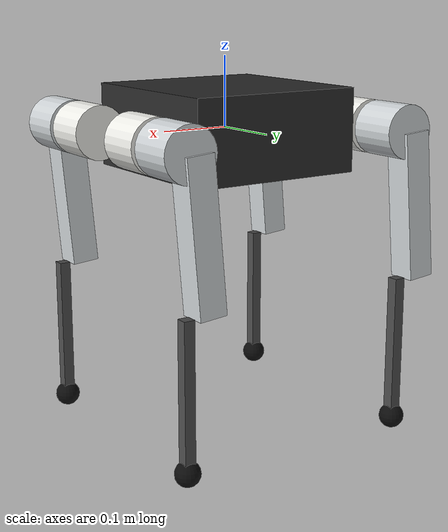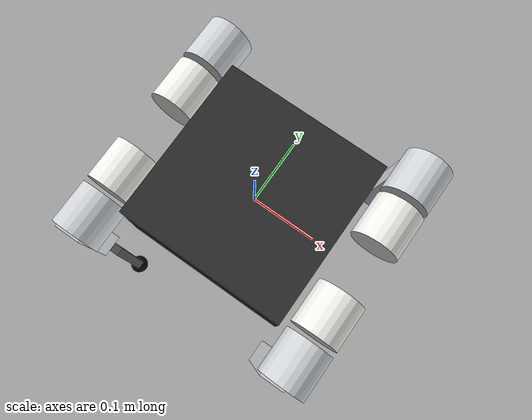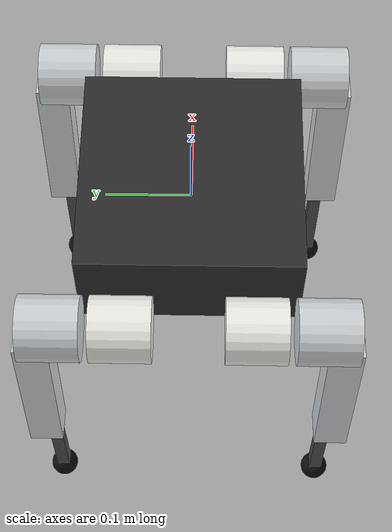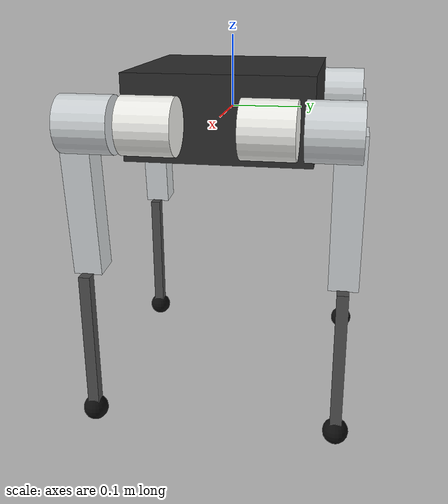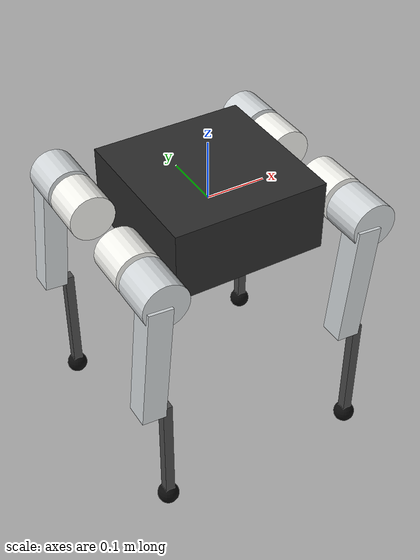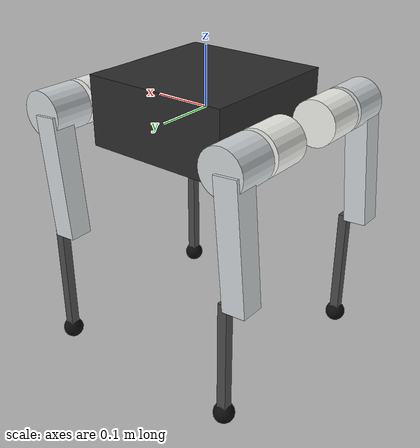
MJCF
<mujoco model="robot">
  <compiler angle="radian"/>
  <worldbody>
    <geom size="0.128 0.128 0.059" type="box" rgba="0.17 0.17 0.17 1"/>
    <body name="leg1_link1" pos="0.177 -0.0755 0">
      <inertial pos="-0.00461 0.02471 0.00019" quat="0.28679 0.646337 -0.28679 0.646337" mass="0.68678" diaginertia="0.00057 0.000555249 0.000454751"/>
      <joint name="leg1_joint1" pos="0 0 0" axis="1 0 0" range="-0.75 0.75" damping="0.1" frictionloss="0.01"/>
      <geom size="0.038 0.035" quat="0.707388 0.706825 0 0" type="cylinder" rgba="0.95 0.95 0.93 1"/>
      <body name="leg1_link2" pos="0 -0.0993 0">
        <inertial pos="-0.00238 0.02441 -0.04244" quat="0.981879 0.109326 -0.0415327 0.149121" mass="1.22859" diaginertia="0.00760341 0.00707203 0.00135456"/>
        <joint name="leg1_joint2" pos="0 0 0" axis="0 1 0" range="-1.3 2.8" damping="0.1" frictionloss="0.01"/>
        <geom size="0.038 0.035" pos="0 0.02 0" quat="0.707388 0.706825 0 0" type="cylinder" rgba="0.82 0.84 0.85 1"/>
        <geom size="0.105 0.02 0.02" pos="-0.02 0 -0.105" quat="0.675982 0 0.736918 0" type="box" rgba="0.82 0.84 0.85 1"/>
        <body name="leg1_link3" pos="0 0 -0.21">
          <inertial pos="0.00353064 0 -0.103181" quat="0.999797 0 0.0201409 0" mass="0.21703" diaginertia="0.0011769 0.00117616 3.92612e-05"/>
          <joint name="leg1_joint3" pos="0 0 0" axis="0 1 0" range="-2.805 -0.755" damping="0.01" frictionloss="0.2"/>
          <geom size="0.105 0.008 0.008" pos="0 0 -0.105" quat="0.707388 0 0.706825 0" type="box" rgba="0.3 0.3 0.3 1"/>
          <geom size="0.018" pos="0 0 -0.21" rgba="0.05 0.05 0.05 1"/>
        </body>
      </body>
    </body>
    <body name="leg2_link1" pos="0.177 0.0755 0">
      <inertial pos="-0.00461 -0.02471 0.00019" quat="0.646337 0.28679 -0.646337 0.28679" mass="0.68678" diaginertia="0.00057 0.000555249 0.000454751"/>
      <joint name="leg2_joint1" pos="0 0 0" axis="1 0 0" range="-0.75 0.75" damping="0.1" frictionloss="0.01"/>
      <geom size="0.038 0.035" quat="0.707388 0.706825 0 0" type="cylinder" rgba="0.95 0.95 0.93 1"/>
      <body name="leg2_link2" pos="0 0.0993 0">
        <inertial pos="-0.00238 -0.02441 -0.04244" quat="0.981879 -0.109326 -0.0415327 -0.149121" mass="1.22859" diaginertia="0.00760341 0.00707203 0.00135456"/>
        <joint name="leg2_joint2" pos="0 0 0" axis="0 1 0" range="-1.3 2.8" damping="0.1" frictionloss="0.01"/>
        <geom size="0.038 0.035" pos="0 -0.02 0" quat="0.707388 0.706825 0 0" type="cylinder" rgba="0.82 0.84 0.85 1"/>
        <geom size="0.105 0.02 0.02" pos="-0.02 0 -0.105" quat="0.675982 0 0.736918 0" type="box" rgba="0.82 0.84 0.85 1"/>
        <body name="leg2_link3" pos="0 0 -0.21">
          <inertial pos="0.00353064 0 -0.103181" quat="0.999797 0 0.0201409 0" mass="0.21703" diaginertia="0.0011769 0.00117616 3.92612e-05"/>
          <joint name="leg2_joint3" pos="0 0 0" axis="0 1 0" range="-2.805 -0.755" damping="0.01" frictionloss="0.2"/>
          <geom size="0.105 0.008 0.008" pos="0 0 -0.105" quat="0.707388 0 0.706825 0" type="box" rgba="0.3 0.3 0.3 1"/>
          <geom size="0.018" pos="0 0 -0.21" rgba="0.05 0.05 0.05 1"/>
        </body>
      </body>
    </body>
    <body name="leg3_link1" pos="-0.177 -0.0755 0">
      <inertial pos="0.00461 0.02471 0.00019" quat="0.646337 0.28679 -0.646337 0.28679" mass="0.68678" diaginertia="0.00057 0.000555249 0.000454751"/>
      <joint name="leg3_joint1" pos="0 0 0" axis="1 0 0" range="-0.75 0.75" damping="0.1" frictionloss="0.01"/>
      <geom size="0.038 0.035" quat="0.707388 0.706825 0 0" type="cylinder" rgba="0.95 0.95 0.93 1"/>
      <body name="leg3_link2" pos="0 -0.0993 0">
        <inertial pos="0.00238 0.02441 -0.04244" quat="0.981879 0.109326 0.0415327 -0.149121" mass="1.22859" diaginertia="0.00760341 0.00707203 0.00135456"/>
        <joint name="leg3_joint2" pos="0 0 0" axis="0 1 0" range="-1.3 2.8" damping="0.1" frictionloss="0.01"/>
        <geom size="0.038 0.035" pos="0 0.02 0" quat="0.707388 0.706825 0 0" type="cylinder" rgba="0.82 0.84 0.85 1"/>
        <geom size="0.105 0.02 0.02" pos="-0.02 0 -0.105" quat="0.675982 0 0.736918 0" type="box" rgba="0.82 0.84 0.85 1"/>
        <body name="leg3_link3" pos="0 0 -0.21">
          <inertial pos="-0.00353064 0 -0.103181" quat="0.999797 0 -0.0201409 0" mass="0.21703" diaginertia="0.0011769 0.00117616 3.92612e-05"/>
          <joint name="leg3_joint3" pos="0 0 0" axis="0 1 0" range="-2.805 -0.755" damping="0.01" frictionloss="0.2"/>
          <geom size="0.105 0.008 0.008" pos="0 0 -0.105" quat="0.707388 0 0.706825 0" type="box" rgba="0.3 0.3 0.3 1"/>
          <geom size="0.018" pos="0 0 -0.21" rgba="0.05 0.05 0.05 1"/>
        </body>
      </body>
    </body>
    <body name="leg4_link1" pos="-0.177 0.0755 0">
      <inertial pos="0.00461 -0.02471 0.00019" quat="0.28679 0.646337 -0.28679 0.646337" mass="0.68678" diaginertia="0.00057 0.000555249 0.000454751"/>
      <joint name="leg4_joint1" pos="0 0 0" axis="1 0 0" range="-0.75 0.75" damping="0.1" frictionloss="0.01"/>
      <geom size="0.038 0.035" quat="0.707388 0.706825 0 0" type="cylinder" rgba="0.95 0.95 0.93 1"/>
      <body name="leg4_link2" pos="0 0.0993 0">
        <inertial pos="0.00238 -0.02441 -0.04244" quat="0.981879 -0.109326 0.0415327 0.149121" mass="1.22859" diaginertia="0.00760341 0.00707203 0.00135456"/>
        <joint name="leg4_joint2" pos="0 0 0" axis="0 1 0" range="-1.3 2.8" damping="0.1" frictionloss="0.01"/>
        <geom size="0.038 0.035" pos="0 -0.02 0" quat="0.707388 0.706825 0 0" type="cylinder" rgba="0.82 0.84 0.85 1"/>
        <geom size="0.105 0.02 0.02" pos="-0.02 0 -0.105" quat="0.675982 0 0.736918 0" type="box" rgba="0.82 0.84 0.85 1"/>
        <body name="leg4_link3" pos="0 0 -0.21">
          <inertial pos="-0.00353064 0 -0.103181" quat="0.999797 0 -0.0201409 0" mass="0.21703" diaginertia="0.0011769 0.00117616 3.92612e-05"/>
          <joint name="leg4_joint3" pos="0 0 0" axis="0 1 0" range="-2.805 -0.755" damping="0.01" frictionloss="0.2"/>
          <geom size="0.105 0.008 0.008" pos="0 0 -0.105" quat="0.707388 0 0.706825 0" type="box" rgba="0.3 0.3 0.3 1"/>
          <geom size="0.018" pos="0 0 -0.21" rgba="0.05 0.05 0.05 1"/>
        </body>
      </body>
    </body>
  </worldbody>
</mujoco>
